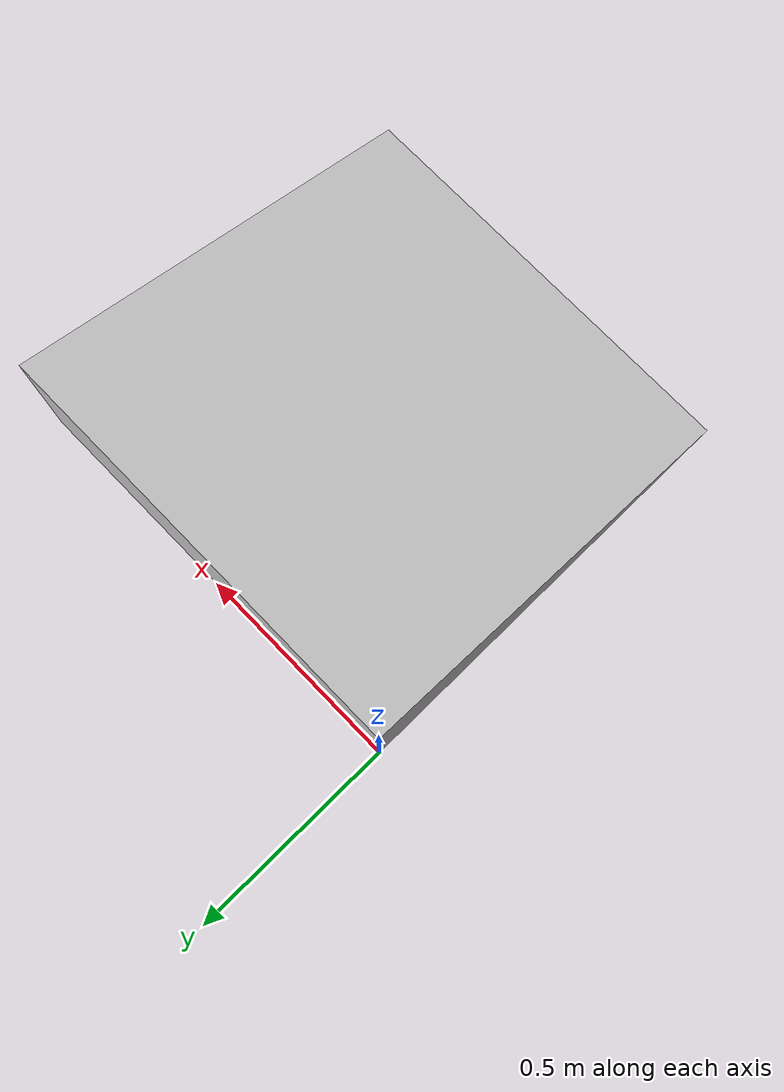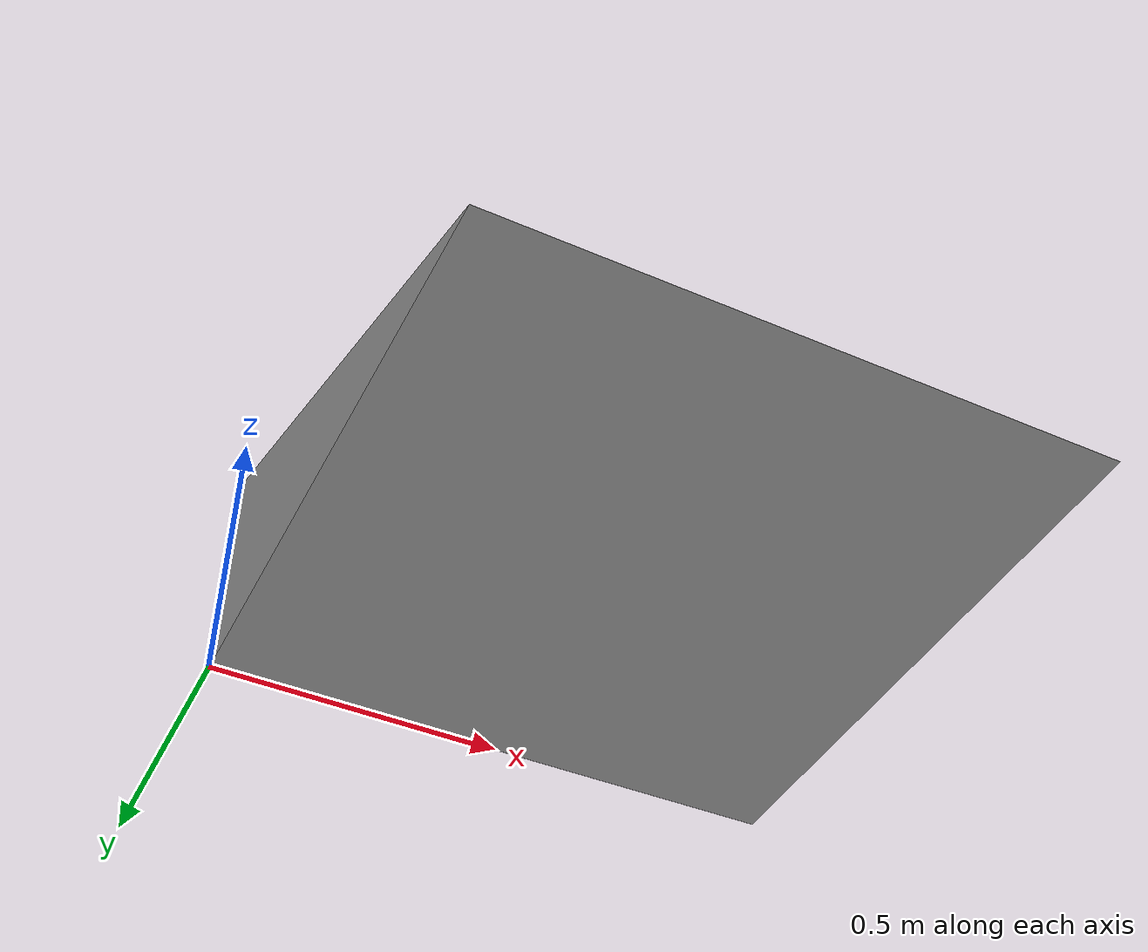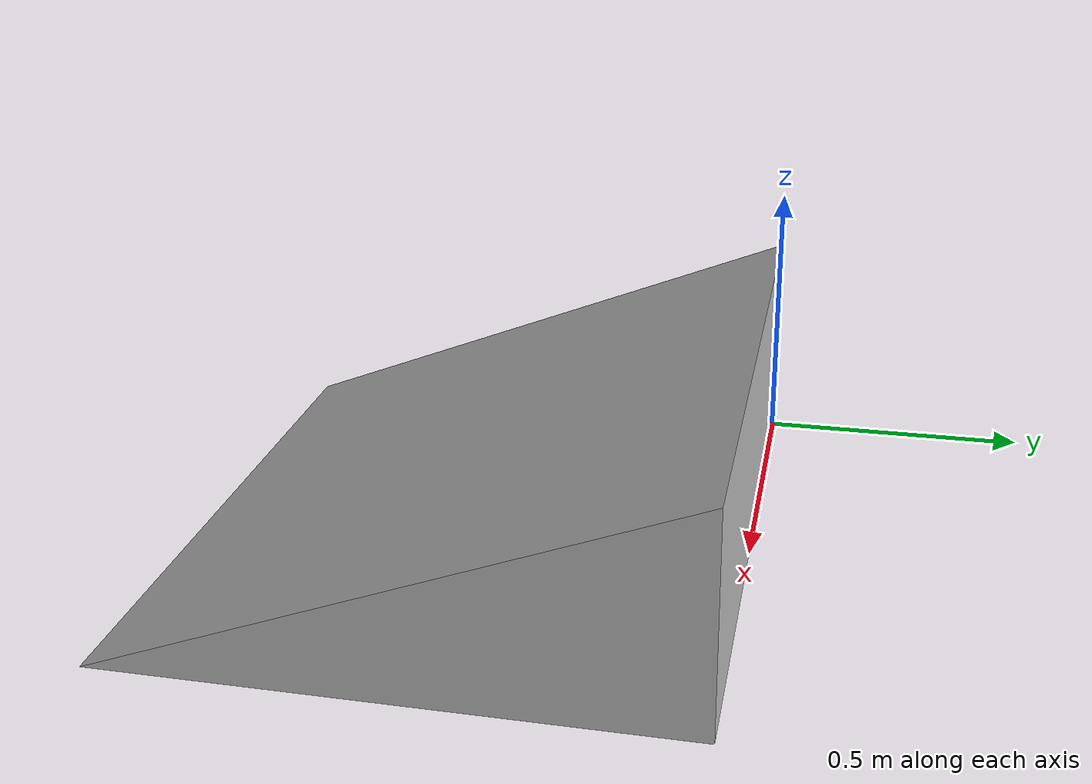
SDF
<?xml version='1.0'?>
<sdf version='1.7'>
  <model name='xiepo'>
    <link name='link'>
      <pose>0 0 0 0 0 0</pose>
      <visual name='visual'>
        <geometry>
          <mesh>
            <uri>/root/workspace/self_gazebo_models/xiepo/meshes/xiepo.stl</uri>
            <scale>0.001 0.001 0.004</scale>
          </mesh>
        </geometry>
        <material>
          <script>
	          <uri>/root/workspace/self_gazebo_models/xiepo/materials/scripts</uri>
            <uri>/root/workspace/self_gazebo_models/xiepo/materials/textures</uri>
            <name>TestZone/xiepo</name>
          </script>
        </material>
      </visual>
      <collision name='collision'>
        <geometry>
          <mesh>
            <uri>/root/workspace/self_gazebo_models/xiepo/meshes/xiepo.stl</uri>
            <scale>0.001 0.001 0.004</scale>
          </mesh>
        </geometry>
      </collision>
    </link>
    <static>1</static>
    <allow_auto_disable>1</allow_auto_disable>
  </model>
</sdf>
